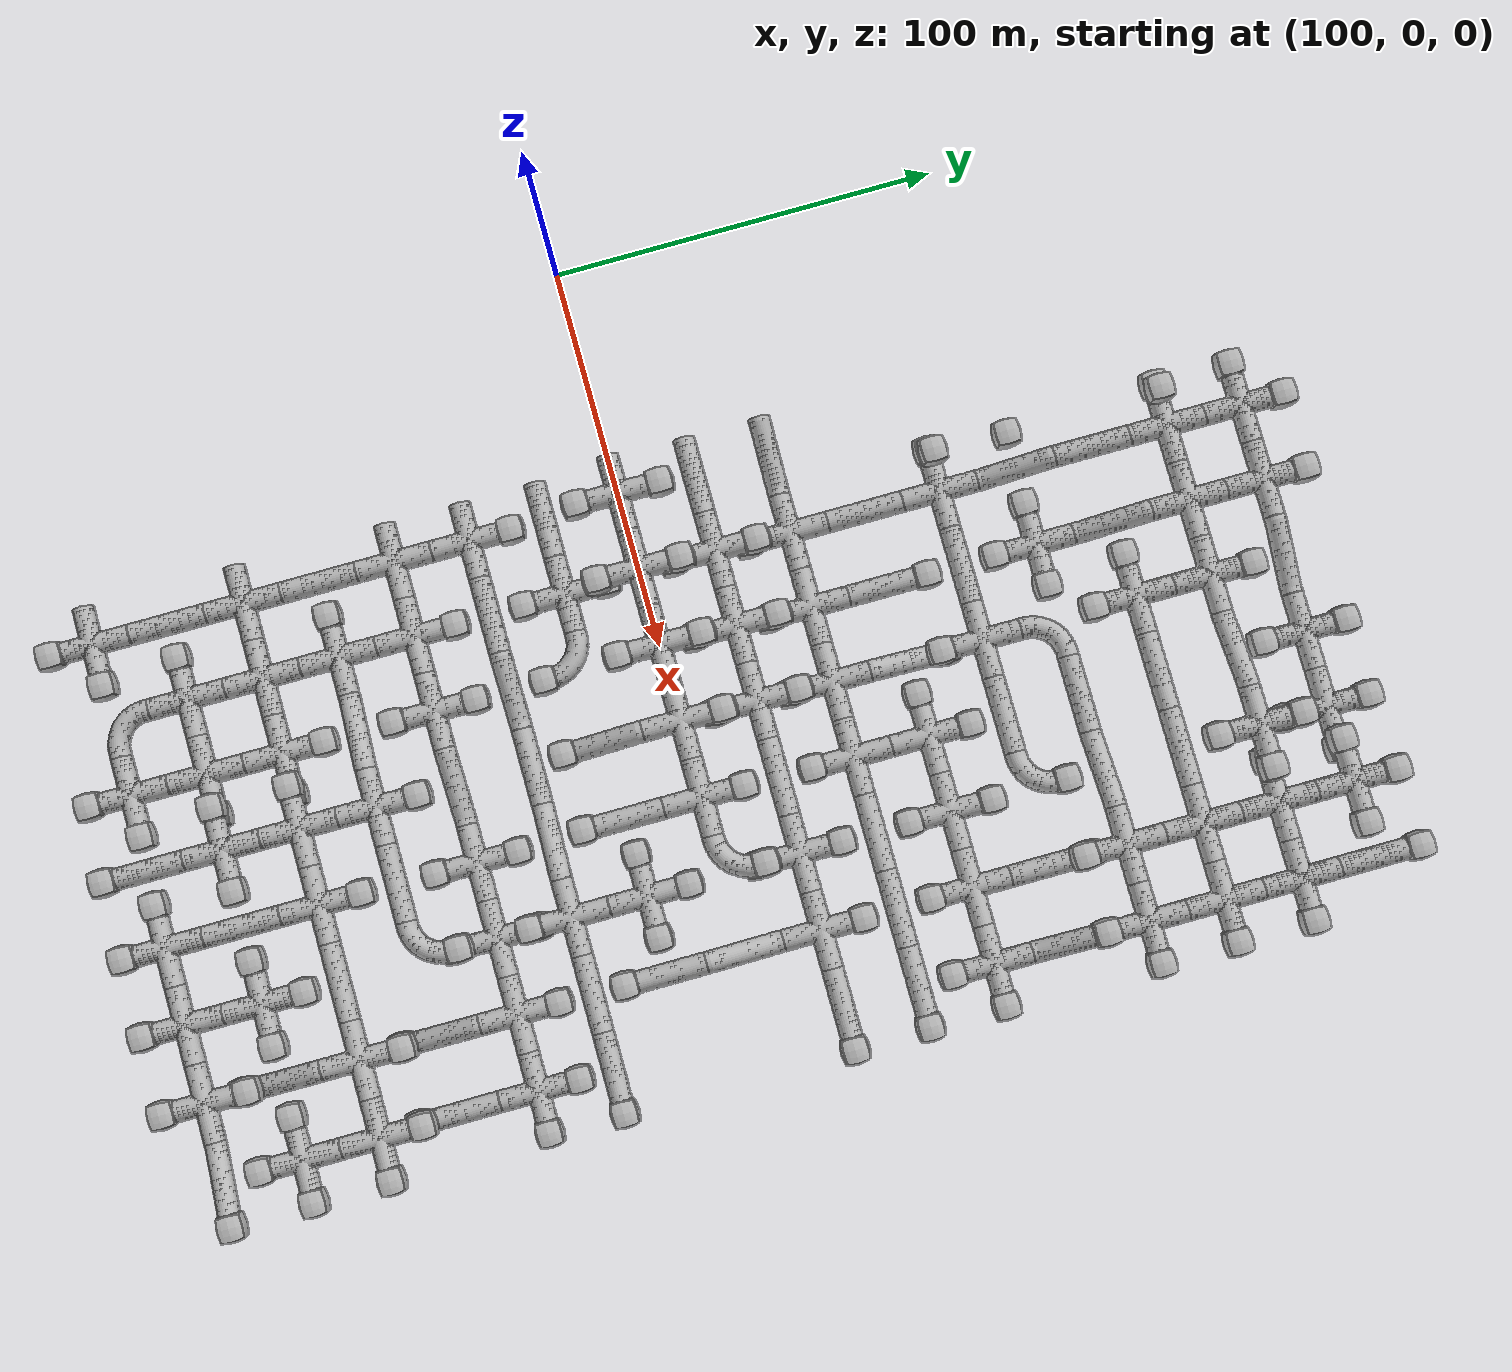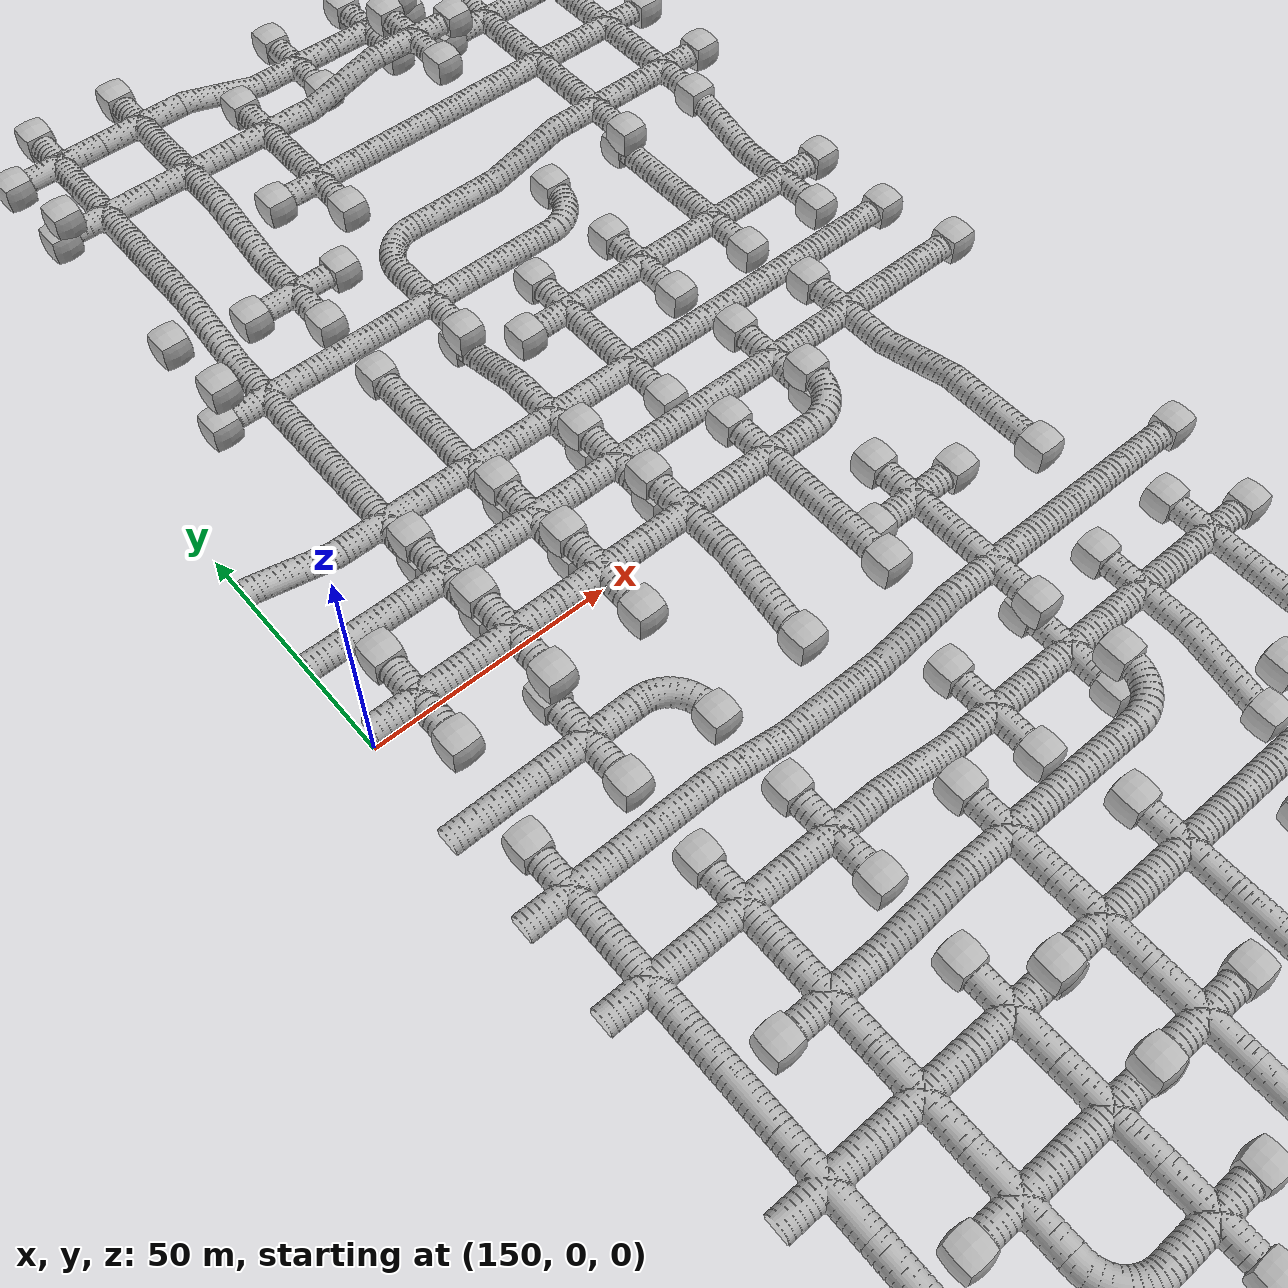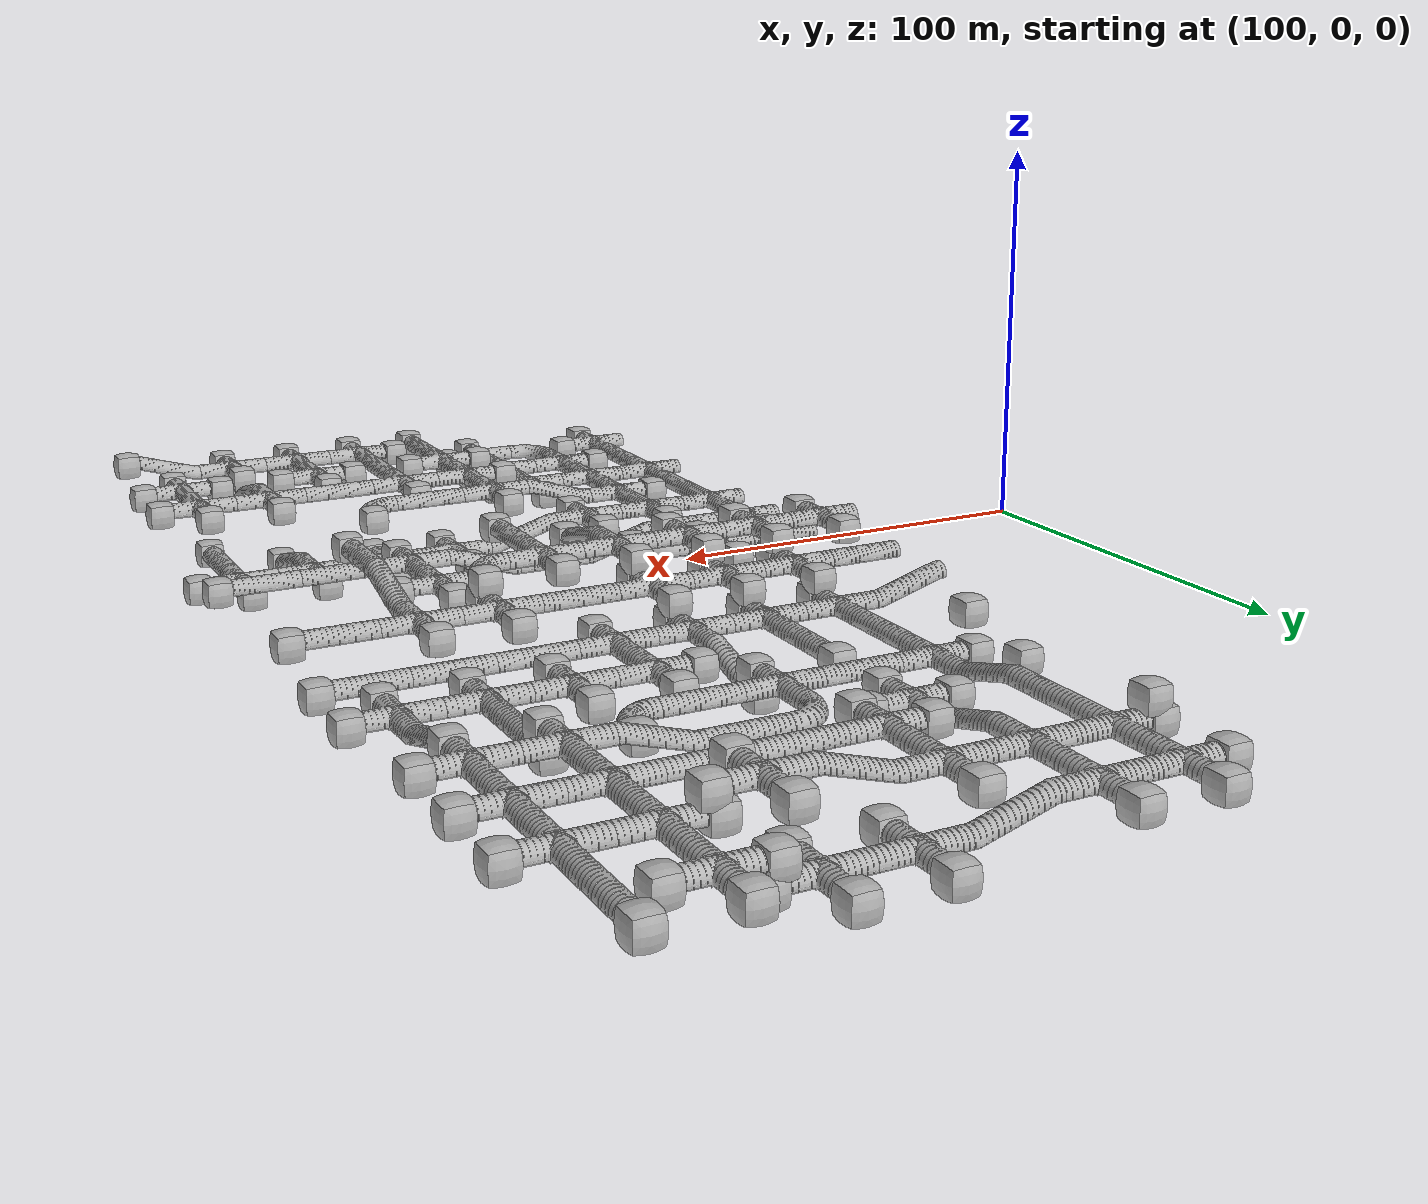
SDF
<sdf version="1.6">
 <world name="tunnel_circuit_03">
  <include>
   <name>tile_23</name>
   <uri>model://tunnel_tile_1</uri>
   <pose>180.000000 160.000000 0.000000 0 0 0.000000</pose>
  </include>
  <include>
   <name>tile_24</name>
   <uri>model://tunnel_tile_blocker</uri>
   <pose>169.000000 160.000000 0.000000 0 0 0.000000</pose>
  </include>
  <include>
   <name>tile_25</name>
   <uri>model://tunnel_tile_blocker</uri>
   <pose>180.000000 171.000000 0.000000 0 0 0.000000</pose>
  </include>
  <include>
   <name>tile_26</name>
   <uri>model://tunnel_tile_1</uri>
   <pose>200.000000 160.000000 0.000000 0 0 0.000000</pose>
  </include>
  <include>
   <name>tile_27</name>
   <uri>model://tunnel_tile_blocker</uri>
   <pose>200.000000 171.000000 0.000000 0 0 0.000000</pose>
  </include>
  <include>
   <name>tile_28</name>
   <uri>model://tunnel_tile_6</uri>
   <pose>220.000000 160.000000 -5.000000 0 0 1.570796</pose>
  </include>
  <include>
   <name>tile_29</name>
   <uri>model://tunnel_tile_1</uri>
   <pose>240.000000 160.000000 -5.000000 0 0 0.000000</pose>
  </include>
  <include>
   <name>tile_30</name>
   <uri>model://tunnel_tile_blocker</uri>
   <pose>240.000000 171.000000 -5.000000 0 0 0.000000</pose>
  </include>
  <include>
   <name>tile_31</name>
   <uri>model://tunnel_tile_blocker</uri>
   <pose>240.000000 149.000000 -5.000000 0 0 0.000000</pose>
  </include>
  <include>
   <name>tile_32</name>
   <uri>model://tunnel_tile_1</uri>
   <pose>260.000000 160.000000 -5.000000 0 0 0.000000</pose>
  </include>
  <include>
   <name>tile_33</name>
   <uri>model://tunnel_tile_blocker</uri>
   <pose>260.000000 171.000000 -5.000000 0 0 0.000000</pose>
  </include>
  <include>
   <name>tile_34</name>
   <uri>model://tunnel_tile_blocker</uri>
   <pose>260.000000 149.000000 -5.000000 0 0 0.000000</pose>
  </include>
  <include>
   <name>tile_35</name>
   <uri>model://tunnel_tile_blocker</uri>
   <pose>271.000000 160.000000 -5.000000 0 0 0.000000</pose>
  </include>
  <include>
   <name>tile_36</name>
   <uri>model://tunnel_tile_1</uri>
   <pose>280.000000 160.000000 0.000000 0 0 0.000000</pose>
  </include>
  <include>
   <name>tile_37</name>
   <uri>model://tunnel_tile_blocker</uri>
   <pose>269.000000 160.000000 0.000000 0 0 0.000000</pose>
  </include>
  <include>
   <name>tile_38</name>
   <uri>model://tunnel_tile_blocker</uri>
   <pose>291.000000 160.000000 0.000000 0 0 0.000000</pose>
  </include>
  <include>
   <name>tile_39</name>
   <uri>model://tunnel_tile_blocker</uri>
   <pose>280.000000 171.000000 0.000000 0 0 0.000000</pose>
  </include>
  <include>
   <name>tile_40</name>
   <uri>model://tunnel_tile_5</uri>
   <pose>300.000000 160.000000 0.000000 0 0 3.141593</pose>
  </include>
  <include>
   <name>tile_41</name>
   <uri>model://tunnel_tile_blocker</uri>
   <pose>300.000000 171.000000 0.000000 0 0 0.000000</pose>
  </include>
  <include>
   <name>tile_58</name>
   <uri>model://tunnel_tile_blocker</uri>
   <pose>171.000000 140.000000 5.000000 0 0 0.000000</pose>
  </include>
  <include>
   <name>tile_59</name>
   <uri>model://tunnel_tile_1</uri>
   <pose>180.000000 140.000000 0.000000 0 0 0.000000</pose>
  </include>
  <include>
   <name>tile_60</name>
   <uri>model://tunnel_tile_blocker</uri>
   <pose>169.000000 140.000000 0.000000 0 0 0.000000</pose>
  </include>
  <include>
   <name>tile_61</name>
   <uri>model://tunnel_tile_1</uri>
   <pose>200.000000 140.000000 0.000000 0 0 0.000000</pose>
  </include>
  <include>
   <name>tile_62</name>
   <uri>model://tunnel_tile_1</uri>
   <pose>220.000000 140.000000 0.000000 0 0 0.000000</pose>
  </include>
  <include>
   <name>tile_63</name>
   <uri>model://tunnel_tile_blocker</uri>
   <pose>220.000000 151.000000 0.000000 0 0 0.000000</pose>
  </include>
  <include>
   <name>tile_64</name>
   <uri>model://tunnel_tile_6</uri>
   <pose>240.000000 140.000000 0.000000 0 0 4.712389</pose>
  </include>
  <include>
   <name>tile_65</name>
   <uri>model://tunnel_tile_1</uri>
   <pose>260.000000 140.000000 5.000000 0 0 0.000000</pose>
  </include>
  <include>
   <name>tile_66</name>
   <uri>model://tunnel_tile_blocker</uri>
   <pose>260.000000 151.000000 5.000000 0 0 0.000000</pose>
  </include>
  <include>
   <name>tile_67</name>
   <uri>model://tunnel_tile_blocker</uri>
   <pose>260.000000 129.000000 5.000000 0 0 0.000000</pose>
  </include>
  <include>
   <name>tile_68</name>
   <uri>model://tunnel_tile_blocker</uri>
   <pose>271.000000 140.000000 5.000000 0 0 0.000000</pose>
  </include>
  <include>
   <name>tile_69</name>
   <uri>model://tunnel_tile_1</uri>
   <pose>280.000000 140.000000 0.000000 0 0 0.000000</pose>
  </include>
  <include>
   <name>tile_70</name>
   <uri>model://tunnel_tile_blocker</uri>
   <pose>269.000000 140.000000 0.000000 0 0 0.000000</pose>
  </include>
  <include>
   <name>tile_71</name>
   <uri>model://tunnel_tile_1</uri>
   <pose>300.000000 140.000000 0.000000 0 0 0.000000</pose>
  </include>
  <include>
   <name>tile_72</name>
   <uri>model://tunnel_tile_blocker</uri>
   <pose>311.000000 140.000000 0.000000 0 0 0.000000</pose>
  </include>
  <include>
   <name>tile_87</name>
   <uri>model://tunnel_tile_5</uri>
   <pose>180.000000 120.000000 0.000000 0 0 3.141593</pose>
  </include>
  <include>
   <name>tile_88</name>
   <uri>model://tunnel_tile_6</uri>
   <pose>200.000000 120.000000 -5.000000 0 0 0.000000</pose>
  </include>
  <include>
   <name>tile_89</name>
   <uri>model://tunnel_tile_1</uri>
   <pose>220.000000 120.000000 0.000000 0 0 0.000000</pose>
  </include>
  <include>
   <name>tile_90</name>
   <uri>model://tunnel_tile_blocker</uri>
   <pose>209.000000 120.000000 0.000000 0 0 0.000000</pose>
  </include>
  <include>
   <name>tile_91</name>
   <uri>model://tunnel_tile_blocker</uri>
   <pose>220.000000 109.000000 0.000000 0 0 0.000000</pose>
  </include>
  <include>
   <name>tile_92</name>
   <uri>model://tunnel_tile_5</uri>
   <pose>240.000000 120.000000 0.000000 0 0 1.570796</pose>
  </include>
  <include>
   <name>tile_93</name>
   <uri>model://tunnel_tile_5</uri>
   <pose>260.000000 120.000000 0.000000 0 0 4.712389</pose>
  </include>
  <include>
   <name>tile_94</name>
   <uri>model://tunnel_tile_1</uri>
   <pose>280.000000 120.000000 0.000000 0 0 0.000000</pose>
  </include>
  <include>
   <name>tile_95</name>
   <uri>model://tunnel_tile_1</uri>
   <pose>300.000000 120.000000 0.000000 0 0 0.000000</pose>
  </include>
  <include>
   <name>tile_96</name>
   <uri>model://tunnel_tile_blocker</uri>
   <pose>311.000000 120.000000 0.000000 0 0 0.000000</pose>
  </include>
  <include>
   <name>tile_115</name>
   <uri>model://tunnel_tile_blocker</uri>
   <pose>171.000000 100.000000 0.000000 0 0 0.000000</pose>
  </include>
  <include>
   <name>tile_116</name>
   <uri>model://tunnel_tile_6</uri>
   <pose>180.000000 100.000000 -5.000000 0 0 0.000000</pose>
  </include>
  <include>
   <name>tile_117</name>
   <uri>model://tunnel_tile_1</uri>
   <pose>200.000000 100.000000 -5.000000 0 0 0.000000</pose>
  </include>
  <include>
   <name>tile_118</name>
   <uri>model://tunnel_tile_blocker</uri>
   <pose>211.000000 100.000000 -5.000000 0 0 0.000000</pose>
  </include>
  <include>
   <name>tile_119</name>
   <uri>model://tunnel_tile_blocker</uri>
   <pose>189.000000 100.000000 -5.000000 0 0 0.000000</pose>
  </include>
  <include>
   <name>tile_120</name>
   <uri>model://tunnel_tile_blocker</uri>
   <pose>200.000000 89.000000 -5.000000 0 0 0.000000</pose>
  </include>
  <include>
   <name>tile_121</name>
   <uri>model://tunnel_tile_2</uri>
   <pose>220.000000 100.000000 -5.000000 0 0 0.000000</pose>
  </include>
  <include>
   <name>tile_122</name>
   <uri>model://tunnel_tile_5</uri>
   <pose>240.000000 100.000000 -5.000000 0 0 1.570796</pose>
  </include>
  <include>
   <name>tile_123</name>
   <uri>model://tunnel_tile_6</uri>
   <pose>260.000000 100.000000 -5.000000 0 0 4.712389</pose>
  </include>
  <include>
   <name>tile_124</name>
   <uri>model://tunnel_tile_1</uri>
   <pose>280.000000 100.000000 0.000000 0 0 0.000000</pose>
  </include>
  <include>
   <name>tile_125</name>
   <uri>model://tunnel_tile_blocker</uri>
   <pose>280.000000 89.000000 0.000000 0 0 0.000000</pose>
  </include>
  <include>
   <name>tile_126</name>
   <uri>model://tunnel_tile_1</uri>
   <pose>300.000000 100.000000 0.000000 0 0 0.000000</pose>
  </include>
  <include>
   <name>tile_127</name>
   <uri>model://tunnel_tile_blocker</uri>
   <pose>300.000000 89.000000 0.000000 0 0 0.000000</pose>
  </include>
  <include>
   <name>tile_128</name>
   <uri>model://tunnel_tile_blocker</uri>
   <pose>311.000000 100.000000 0.000000 0 0 0.000000</pose>
  </include>
  <include>
   <name>tile_144</name>
   <uri>model://tunnel_tile_blocker</uri>
   <pose>171.000000 80.000000 5.000000 0 0 0.000000</pose>
  </include>
  <include>
   <name>tile_145</name>
   <uri>model://tunnel_tile_1</uri>
   <pose>180.000000 80.000000 -5.000000 0 0 0.000000</pose>
  </include>
  <include>
   <name>tile_146</name>
   <uri>model://tunnel_tile_blocker</uri>
   <pose>169.000000 80.000000 -5.000000 0 0 0.000000</pose>
  </include>
  <include>
   <name>tile_147</name>
   <uri>model://tunnel_tile_5</uri>
   <pose>200.000000 80.000000 -5.000000 0 0 1.570796</pose>
  </include>
  <include>
   <name>tile_148</name>
   <uri>model://tunnel_tile_1</uri>
   <pose>220.000000 80.000000 -5.000000 0 0 0.000000</pose>
  </include>
  <include>
   <name>tile_149</name>
   <uri>model://tunnel_tile_blocker</uri>
   <pose>220.000000 69.000000 -5.000000 0 0 0.000000</pose>
  </include>
  <include>
   <name>tile_150</name>
   <uri>model://tunnel_tile_5</uri>
   <pose>240.000000 80.000000 -5.000000 0 0 1.570796</pose>
  </include>
  <include>
   <name>tile_151</name>
   <uri>model://tunnel_tile_2</uri>
   <pose>260.000000 80.000000 -5.000000 0 0 3.141593</pose>
  </include>
  <include>
   <name>tile_152</name>
   <uri>model://tunnel_tile_blocker</uri>
   <pose>260.000000 91.000000 -5.000000 0 0 0.000000</pose>
  </include>
  <include>
   <name>tile_153</name>
   <uri>model://tunnel_tile_5</uri>
   <pose>280.000000 80.000000 -5.000000 0 0 3.141593</pose>
  </include>
  <include>
   <name>tile_154</name>
   <uri>model://tunnel_tile_blocker</uri>
   <pose>280.000000 91.000000 -5.000000 0 0 0.000000</pose>
  </include>
  <include>
   <name>tile_155</name>
   <uri>model://tunnel_tile_6</uri>
   <pose>300.000000 80.000000 -5.000000 0 0 0.000000</pose>
  </include>
  <include>
   <name>tile_168</name>
   <uri>model://tunnel_tile_5</uri>
   <pose>180.000000 60.000000 -5.000000 0 0 3.141593</pose>
  </include>
  <include>
   <name>tile_169</name>
   <uri>model://tunnel_tile_5</uri>
   <pose>200.000000 60.000000 -5.000000 0 0 3.141593</pose>
  </include>
  <include>
   <name>tile_170</name>
   <uri>model://tunnel_tile_blocker</uri>
   <pose>200.000000 71.000000 -5.000000 0 0 0.000000</pose>
  </include>
  <include>
   <name>tile_171</name>
   <uri>model://tunnel_tile_6</uri>
   <pose>220.000000 60.000000 -10.000000 0 0 3.141593</pose>
  </include>
  <include>
   <name>tile_172</name>
   <uri>model://tunnel_tile_blocker</uri>
   <pose>220.000000 71.000000 -10.000000 0 0 0.000000</pose>
  </include>
  <include>
   <name>tile_173</name>
   <uri>model://tunnel_tile_1</uri>
   <pose>240.000000 60.000000 -5.000000 0 0 0.000000</pose>
  </include>
  <include>
   <name>tile_174</name>
   <uri>model://tunnel_tile_blocker</uri>
   <pose>229.000000 60.000000 -5.000000 0 0 0.000000</pose>
  </include>
  <include>
   <name>tile_175</name>
   <uri>model://tunnel_tile_blocker</uri>
   <pose>240.000000 71.000000 -5.000000 0 0 0.000000</pose>
  </include>
  <include>
   <name>tile_176</name>
   <uri>model://tunnel_tile_1</uri>
   <pose>260.000000 60.000000 -5.000000 0 0 0.000000</pose>
  </include>
  <include>
   <name>tile_177</name>
   <uri>model://tunnel_tile_blocker</uri>
   <pose>260.000000 71.000000 -5.000000 0 0 0.000000</pose>
  </include>
  <include>
   <name>tile_178</name>
   <uri>model://tunnel_tile_blocker</uri>
   <pose>260.000000 49.000000 -5.000000 0 0 0.000000</pose>
  </include>
  <include>
   <name>tile_179</name>
   <uri>model://tunnel_tile_1</uri>
   <pose>280.000000 60.000000 -5.000000 0 0 0.000000</pose>
  </include>
  <include>
   <name>tile_180</name>
   <uri>model://tunnel_tile_blocker</uri>
   <pose>280.000000 49.000000 -5.000000 0 0 0.000000</pose>
  </include>
  <include>
   <name>tile_181</name>
   <uri>model://tunnel_tile_1</uri>
   <pose>300.000000 60.000000 -5.000000 0 0 0.000000</pose>
  </include>
  <include>
   <name>tile_182</name>
   <uri>model://tunnel_tile_blocker</uri>
   <pose>300.000000 49.000000 -5.000000 0 0 0.000000</pose>
  </include>
  <include>
   <name>tile_183</name>
   <uri>model://tunnel_tile_blocker</uri>
   <pose>311.000000 60.000000 -5.000000 0 0 0.000000</pose>
  </include>
  <include>
   <name>phone_3</name>
   <uri>model://Phone</uri>
   <pose>297.800000 56.000000 -4.992000 1.570796 3.316126 0.000000</pose>
  </include>
  <include>
   <name>tile_195</name>
   <uri>model://tunnel_tile_6</uri>
   <pose>160.000000 40.000000 -5.000000 0 0 1.570796</pose>
  </include>
  <include>
   <name>tile_196</name>
   <uri>model://tunnel_tile_1</uri>
   <pose>180.000000 40.000000 -5.000000 0 0 0.000000</pose>
  </include>
  <include>
   <name>tile_197</name>
   <uri>model://tunnel_tile_blocker</uri>
   <pose>180.000000 29.000000 -5.000000 0 0 0.000000</pose>
  </include>
  <include>
   <name>tile_198</name>
   <uri>model://tunnel_tile_1</uri>
   <pose>200.000000 40.000000 -5.000000 0 0 0.000000</pose>
  </include>
  <include>
   <name>tile_199</name>
   <uri>model://tunnel_tile_blocker</uri>
   <pose>200.000000 29.000000 -5.000000 0 0 0.000000</pose>
  </include>
  <include>
   <name>tile_200</name>
   <uri>model://tunnel_tile_1</uri>
   <pose>220.000000 40.000000 -5.000000 0 0 0.000000</pose>
  </include>
  <include>
   <name>tile_201</name>
   <uri>model://tunnel_tile_blocker</uri>
   <pose>220.000000 29.000000 -5.000000 0 0 0.000000</pose>
  </include>
  <include>
   <name>tile_202</name>
   <uri>model://tunnel_tile_1</uri>
   <pose>240.000000 40.000000 -5.000000 0 0 0.000000</pose>
  </include>
  <include>
   <name>tile_203</name>
   <uri>model://tunnel_tile_blocker</uri>
   <pose>240.000000 29.000000 -5.000000 0 0 0.000000</pose>
  </include>
  <include>
   <name>tile_204</name>
   <uri>model://tunnel_tile_blocker</uri>
   <pose>240.000000 29.000000 -5.000000 0 0 0.000000</pose>
  </include>
  <include>
   <name>tile_205</name>
   <uri>model://tunnel_tile_5</uri>
   <pose>260.000000 40.000000 -5.000000 0 0 1.570796</pose>
  </include>
  <include>
   <name>tile_206</name>
   <uri>model://tunnel_tile_5</uri>
   <pose>280.000000 40.000000 -5.000000 0 0 1.570796</pose>
  </include>
  <include>
   <name>tile_207</name>
   <uri>model://tunnel_tile_5</uri>
   <pose>300.000000 40.000000 -5.000000 0 0 1.570796</pose>
  </include>
  <include>
   <name>tile_208</name>
   <uri>model://tunnel_tile_blocker</uri>
   <pose>311.000000 40.000000 -5.000000 0 0 0.000000</pose>
  </include>
  <include>
   <name>tile_222</name>
   <uri>model://tunnel_tile_5</uri>
   <pose>160.000000 20.000000 0.000000 0 0 1.570796</pose>
  </include>
  <include>
   <name>tile_223</name>
   <uri>model://tunnel_tile_1</uri>
   <pose>180.000000 20.000000 0.000000 0 0 0.000000</pose>
  </include>
  <include>
   <name>tile_224</name>
   <uri>model://tunnel_tile_blocker</uri>
   <pose>180.000000 31.000000 0.000000 0 0 0.000000</pose>
  </include>
  <include>
   <name>tile_225</name>
   <uri>model://tunnel_tile_blocker</uri>
   <pose>180.000000 9.000000 0.000000 0 0 0.000000</pose>
  </include>
  <include>
   <name>tile_226</name>
   <uri>model://tunnel_tile_1</uri>
   <pose>200.000000 20.000000 0.000000 0 0 0.000000</pose>
  </include>
  <include>
   <name>tile_227</name>
   <uri>model://tunnel_tile_blocker</uri>
   <pose>200.000000 31.000000 0.000000 0 0 0.000000</pose>
  </include>
  <include>
   <name>tile_228</name>
   <uri>model://tunnel_tile_blocker</uri>
   <pose>200.000000 9.000000 0.000000 0 0 0.000000</pose>
  </include>
  <include>
   <name>tile_229</name>
   <uri>model://tunnel_tile_1</uri>
   <pose>220.000000 20.000000 0.000000 0 0 0.000000</pose>
  </include>
  <include>
   <name>tile_230</name>
   <uri>model://tunnel_tile_blocker</uri>
   <pose>220.000000 31.000000 0.000000 0 0 0.000000</pose>
  </include>
  <include>
   <name>tile_231</name>
   <uri>model://tunnel_tile_blocker</uri>
   <pose>220.000000 9.000000 0.000000 0 0 0.000000</pose>
  </include>
  <include>
   <name>tile_232</name>
   <uri>model://tunnel_tile_5</uri>
   <pose>240.000000 20.000000 0.000000 0 0 1.570796</pose>
  </include>
  <include>
   <name>tile_233</name>
   <uri>model://tunnel_tile_1</uri>
   <pose>260.000000 20.000000 0.000000 0 0 0.000000</pose>
  </include>
  <include>
   <name>tile_234</name>
   <uri>model://tunnel_tile_blocker</uri>
   <pose>260.000000 31.000000 0.000000 0 0 0.000000</pose>
  </include>
  <include>
   <name>tile_235</name>
   <uri>model://tunnel_tile_blocker</uri>
   <pose>260.000000 9.000000 0.000000 0 0 0.000000</pose>
  </include>
  <include>
   <name>tile_236</name>
   <uri>model://tunnel_tile_1</uri>
   <pose>280.000000 20.000000 0.000000 0 0 0.000000</pose>
  </include>
  <include>
   <name>tile_237</name>
   <uri>model://tunnel_tile_blocker</uri>
   <pose>280.000000 31.000000 0.000000 0 0 0.000000</pose>
  </include>
  <include>
   <name>tile_238</name>
   <uri>model://tunnel_tile_5</uri>
   <pose>300.000000 20.000000 0.000000 0 0 1.570796</pose>
  </include>
  <include>
   <name>tile_239</name>
   <uri>model://tunnel_tile_blocker</uri>
   <pose>311.000000 20.000000 0.000000 0 0 0.000000</pose>
  </include>
  <include>
   <name>tile_249</name>
   <uri>model://tunnel_tile_1</uri>
   <pose>160.000000 0.000000 5.000000 0 0 0.000000</pose>
  </include>
  <include>
   <name>tile_250</name>
   <uri>model://tunnel_tile_blocker</uri>
   <pose>160.000000 11.000000 5.000000 0 0 0.000000</pose>
  </include>
  <include>
   <name>tile_251</name>
   <uri>model://tunnel_tile_blocker</uri>
   <pose>160.000000 -11.000000 5.000000 0 0 0.000000</pose>
  </include>
  <include>
   <name>tile_252</name>
   <uri>model://tunnel_tile_1</uri>
   <pose>180.000000 0.000000 5.000000 0 0 0.000000</pose>
  </include>
  <include>
   <name>tile_253</name>
   <uri>model://tunnel_tile_blocker</uri>
   <pose>180.000000 11.000000 5.000000 0 0 0.000000</pose>
  </include>
  <include>
   <name>tile_254</name>
   <uri>model://tunnel_tile_blocker</uri>
   <pose>180.000000 -11.000000 5.000000 0 0 0.000000</pose>
  </include>
  <include>
   <name>tile_255</name>
   <uri>model://tunnel_tile_1</uri>
   <pose>200.000000 0.000000 5.000000 0 0 0.000000</pose>
  </include>
  <include>
   <name>tile_256</name>
   <uri>model://tunnel_tile_blocker</uri>
   <pose>200.000000 11.000000 5.000000 0 0 0.000000</pose>
  </include>
  <include>
   <name>tile_257</name>
   <uri>model://tunnel_tile_blocker</uri>
   <pose>200.000000 -11.000000 5.000000 0 0 0.000000</pose>
  </include>
  <include>
   <name>tile_258</name>
   <uri>model://tunnel_tile_1</uri>
   <pose>220.000000 0.000000 5.000000 0 0 0.000000</pose>
  </include>
  <include>
   <name>tile_259</name>
   <uri>model://tunnel_tile_blocker</uri>
   <pose>220.000000 11.000000 5.000000 0 0 0.000000</pose>
  </include>
  <include>
   <name>tile_260</name>
   <uri>model://tunnel_tile_1</uri>
   <pose>240.000000 0.000000 5.000000 0 0 0.000000</pose>
  </include>
  <include>
   <name>tile_261</name>
   <uri>model://tunnel_tile_blocker</uri>
   <pose>240.000000 11.000000 5.000000 0 0 0.000000</pose>
  </include>
  <include>
   <name>tile_262</name>
   <uri>model://tunnel_tile_2</uri>
   <pose>260.000000 0.000000 5.000000 0 0 3.141593</pose>
  </include>
  <include>
   <name>tile_263</name>
   <uri>model://tunnel_tile_blocker</uri>
   <pose>260.000000 11.000000 5.000000 0 0 0.000000</pose>
  </include>
  <include>
   <name>tile_264</name>
   <uri>model://tunnel_tile_6</uri>
   <pose>280.000000 0.000000 0.000000 0 0 3.141593</pose>
  </include>
  <include>
   <name>tile_277</name>
   <uri>model://tunnel_tile_5</uri>
   <pose>160.000000 -20.000000 -5.000000 0 0 1.570796</pose>
  </include>
  <include>
   <name>tile_278</name>
   <uri>model://tunnel_tile_1</uri>
   <pose>180.000000 -20.000000 -5.000000 0 0 0.000000</pose>
  </include>
  <include>
   <name>tile_279</name>
   <uri>model://tunnel_tile_blocker</uri>
   <pose>180.000000 -9.000000 -5.000000 0 0 0.000000</pose>
  </include>
  <include>
   <name>tile_280</name>
   <uri>model://tunnel_tile_blocker</uri>
   <pose>180.000000 -31.000000 -5.000000 0 0 0.000000</pose>
  </include>
  <include>
   <name>tile_281</name>
   <uri>model://tunnel_tile_2</uri>
   <pose>200.000000 -20.000000 -5.000000 0 0 4.712389</pose>
  </include>
  <include>
   <name>tile_282</name>
   <uri>model://tunnel_tile_blocker</uri>
   <pose>200.000000 -31.000000 -5.000000 0 0 0.000000</pose>
  </include>
  <include>
   <name>tile_283</name>
   <uri>model://tunnel_tile_6</uri>
   <pose>220.000000 -20.000000 0.000000 0 0 0.000000</pose>
  </include>
  <include>
   <name>tile_284</name>
   <uri>model://tunnel_tile_blocker</uri>
   <pose>220.000000 -31.000000 0.000000 0 0 0.000000</pose>
  </include>
  <include>
   <name>tile_285</name>
   <uri>model://tunnel_tile_5</uri>
   <pose>240.000000 -20.000000 5.000000 0 0 0.000000</pose>
  </include>
  <include>
   <name>tile_286</name>
   <uri>model://tunnel_tile_blocker</uri>
   <pose>240.000000 -31.000000 5.000000 0 0 0.000000</pose>
  </include>
  <include>
   <name>tile_287</name>
   <uri>model://tunnel_tile_blocker</uri>
   <pose>240.000000 -31.000000 5.000000 0 0 0.000000</pose>
  </include>
  <include>
   <name>extinguisher_3</name>
   <uri>model://Extinguisher</uri>
   <pose>240.000000 -15.000000 5.000000 0 0 0.000000</pose>
  </include>
  <include>
   <name>tile_288</name>
   <uri>model://tunnel_tile_1</uri>
   <pose>260.000000 -20.000000 -5.000000 0 0 0.000000</pose>
  </include>
  <include>
   <name>tile_289</name>
   <uri>model://tunnel_tile_blocker</uri>
   <pose>249.000000 -20.000000 -5.000000 0 0 0.000000</pose>
  </include>
  <include>
   <name>tile_290</name>
   <uri>model://tunnel_tile_blocker</uri>
   <pose>271.000000 -20.000000 -5.000000 0 0 0.000000</pose>
  </include>
  <include>
   <name>tile_291</name>
   <uri>model://tunnel_tile_blocker</uri>
   <pose>260.000000 -9.000000 -5.000000 0 0 0.000000</pose>
  </include>
  <include>
   <name>tile_292</name>
   <uri>model://tunnel_tile_5</uri>
   <pose>280.000000 -20.000000 5.000000 0 0 0.000000</pose>
  </include>
  <include>
   <name>tile_293</name>
   <uri>model://tunnel_tile_blocker</uri>
   <pose>280.000000 -31.000000 5.000000 0 0 0.000000</pose>
  </include>
  <include>
   <name>tile_310</name>
   <uri>model://tunnel_tile_1</uri>
   <pose>160.000000 -40.000000 -5.000000 0 0 0.000000</pose>
  </include>
  <include>
   <name>tile_311</name>
   <uri>model://tunnel_tile_blocker</uri>
   <pose>160.000000 -29.000000 -5.000000 0 0 0.000000</pose>
  </include>
  <include>
   <name>tile_312</name>
   <uri>model://tunnel_tile_5</uri>
   <pose>180.000000 -40.000000 -5.000000 0 0 1.570796</pose>
  </include>
  <include>
   <name>tile_313</name>
   <uri>model://tunnel_tile_6</uri>
   <pose>200.000000 -40.000000 -10.000000 0 0 1.570796</pose>
  </include>
  <include>
   <name>tile_314</name>
   <uri>model://tunnel_tile_5</uri>
   <pose>220.000000 -40.000000 -10.000000 0 0 1.570796</pose>
  </include>
  <include>
   <name>tile_315</name>
   <uri>model://tunnel_tile_6</uri>
   <pose>240.000000 -40.000000 -10.000000 0 0 4.712389</pose>
  </include>
  <include>
   <name>tile_316</name>
   <uri>model://tunnel_tile_1</uri>
   <pose>260.000000 -40.000000 -5.000000 0 0 0.000000</pose>
  </include>
  <include>
   <name>tile_317</name>
   <uri>model://tunnel_tile_blocker</uri>
   <pose>260.000000 -51.000000 -5.000000 0 0 0.000000</pose>
  </include>
  <include>
   <name>tile_318</name>
   <uri>model://tunnel_tile_5</uri>
   <pose>280.000000 -40.000000 -5.000000 0 0 1.570796</pose>
  </include>
  <include>
   <name>tile_319</name>
   <uri>model://tunnel_tile_5</uri>
   <pose>300.000000 -40.000000 -5.000000 0 0 1.570796</pose>
  </include>
  <include>
   <name>tile_320</name>
   <uri>model://tunnel_tile_blocker</uri>
   <pose>311.000000 -40.000000 -5.000000 0 0 0.000000</pose>
  </include>
  <include>
   <name>tile_334</name>
   <uri>model://tunnel_tile_1</uri>
   <pose>160.000000 -60.000000 -5.000000 0 0 0.000000</pose>
  </include>
  <include>
   <name>tile_336</name>
   <uri>model://tunnel_tile_1</uri>
   <pose>180.000000 -60.000000 -5.000000 0 0 0.000000</pose>
  </include>
  <include>
   <name>tile_337</name>
   <uri>model://tunnel_tile_blocker</uri>
   <pose>180.000000 -49.000000 -5.000000 0 0 0.000000</pose>
  </include>
  <include>
   <name>tile_338</name>
   <uri>model://tunnel_tile_1</uri>
   <pose>200.000000 -60.000000 -5.000000 0 0 0.000000</pose>
  </include>
  <include>
   <name>tile_339</name>
   <uri>model://tunnel_tile_blocker</uri>
   <pose>200.000000 -49.000000 -5.000000 0 0 0.000000</pose>
  </include>
  <include>
   <name>tile_340</name>
   <uri>model://tunnel_tile_blocker</uri>
   <pose>200.000000 -71.000000 -5.000000 0 0 0.000000</pose>
  </include>
  <include>
   <name>tile_341</name>
   <uri>model://tunnel_tile_6</uri>
   <pose>220.000000 -60.000000 -10.000000 0 0 1.570796</pose>
  </include>
  <include>
   <name>tile_342</name>
   <uri>model://tunnel_tile_1</uri>
   <pose>240.000000 -60.000000 -10.000000 0 0 0.000000</pose>
  </include>
  <include>
   <name>tile_343</name>
   <uri>model://tunnel_tile_blocker</uri>
   <pose>240.000000 -49.000000 -10.000000 0 0 0.000000</pose>
  </include>
  <include>
   <name>tile_344</name>
   <uri>model://tunnel_tile_blocker</uri>
   <pose>240.000000 -71.000000 -10.000000 0 0 0.000000</pose>
  </include>
  <include>
   <name>tile_345</name>
   <uri>model://tunnel_tile_1</uri>
   <pose>260.000000 -60.000000 -10.000000 0 0 0.000000</pose>
  </include>
  <include>
   <name>tile_346</name>
   <uri>model://tunnel_tile_blocker</uri>
   <pose>260.000000 -49.000000 -10.000000 0 0 0.000000</pose>
  </include>
  <include>
   <name>tile_347</name>
   <uri>model://tunnel_tile_blocker</uri>
   <pose>260.000000 -71.000000 -10.000000 0 0 0.000000</pose>
  </include>
  <include>
   <name>tile_348</name>
   <uri>model://tunnel_tile_1</uri>
   <pose>280.000000 -60.000000 -10.000000 0 0 0.000000</pose>
  </include>
  <include>
   <name>tile_349</name>
   <uri>model://tunnel_tile_blocker</uri>
   <pose>280.000000 -49.000000 -10.000000 0 0 0.000000</pose>
  </include>
  <include>
   <name>tile_350</name>
   <uri>model://tunnel_tile_1</uri>
   <pose>300.000000 -60.000000 -10.000000 0 0 0.000000</pose>
  </include>
  <include>
   <name>tile_351</name>
   <uri>model://tunnel_tile_blocker</uri>
   <pose>300.000000 -49.000000 -10.000000 0 0 0.000000</pose>
  </include>
  <include>
   <name>tile_352</name>
   <uri>model://tunnel_tile_blocker</uri>
   <pose>311.000000 -60.000000 -10.000000 0 0 0.000000</pose>
  </include>
  <include>
   <name>tile_367</name>
   <uri>model://tunnel_tile_5</uri>
   <pose>160.000000 -80.000000 -5.000000 0 0 0.000000</pose>
  </include>
  <include>
   <name>tile_368</name>
   <uri>model://tunnel_tile_1</uri>
   <pose>180.000000 -80.000000 -5.000000 0 0 0.000000</pose>
  </include>
  <include>
   <name>tile_369</name>
   <uri>model://tunnel_tile_blocker</uri>
   <pose>169.000000 -80.000000 -5.000000 0 0 0.000000</pose>
  </include>
  <include>
   <name>tile_370</name>
   <uri>model://tunnel_tile_6</uri>
   <pose>200.000000 -80.000000 -5.000000 0 0 4.712389</pose>
  </include>
  <include>
   <name>tile_371</name>
   <uri>model://tunnel_tile_1</uri>
   <pose>220.000000 -80.000000 0.000000 0 0 0.000000</pose>
  </include>
  <include>
   <name>tile_372</name>
   <uri>model://tunnel_tile_blocker</uri>
   <pose>220.000000 -69.000000 0.000000 0 0 0.000000</pose>
  </include>
  <include>
   <name>tile_373</name>
   <uri>model://tunnel_tile_5</uri>
   <pose>240.000000 -80.000000 0.000000 0 0 1.570796</pose>
  </include>
  <include>
   <name>tile_374</name>
   <uri>model://tunnel_tile_2</uri>
   <pose>260.000000 -80.000000 0.000000 0 0 3.141593</pose>
  </include>
  <include>
   <name>tile_375</name>
   <uri>model://tunnel_tile_blocker</uri>
   <pose>260.000000 -69.000000 0.000000 0 0 0.000000</pose>
  </include>
  <include>
   <name>tile_376</name>
   <uri>model://tunnel_tile_6</uri>
   <pose>280.000000 -80.000000 -15.000000 0 0 0.000000</pose>
  </include>
  <include>
   <name>tile_377</name>
   <uri>model://tunnel_tile_blocker</uri>
   <pose>280.000000 -91.000000 -15.000000 0 0 0.000000</pose>
  </include>
  <include>
   <name>tile_378</name>
   <uri>model://tunnel_tile_5</uri>
   <pose>300.000000 -80.000000 -10.000000 0 0 0.000000</pose>
  </include>
  <include>
   <name>tile_379</name>
   <uri>model://tunnel_tile_blocker</uri>
   <pose>300.000000 -91.000000 -10.000000 0 0 0.000000</pose>
  </include>
  <include>
   <name>tile_395</name>
   <uri>model://tunnel_tile_1</uri>
   <pose>160.000000 -100.000000 -5.000000 0 0 0.000000</pose>
  </include>
  <include>
   <name>tile_397</name>
   <uri>model://tunnel_tile_1</uri>
   <pose>180.000000 -100.000000 -5.000000 0 0 0.000000</pose>
  </include>
  <include>
   <name>tile_398</name>
   <uri>model://tunnel_tile_1</uri>
   <pose>200.000000 -100.000000 -5.000000 0 0 0.000000</pose>
  </include>
  <include>
   <name>tile_399</name>
   <uri>model://tunnel_tile_blocker</uri>
   <pose>200.000000 -89.000000 -5.000000 0 0 0.000000</pose>
  </include>
  <include>
   <name>tile_400</name>
   <uri>model://tunnel_tile_blocker</uri>
   <pose>211.000000 -100.000000 -5.000000 0 0 0.000000</pose>
  </include>
  <include>
   <name>tile_401</name>
   <uri>model://tunnel_tile_1</uri>
   <pose>220.000000 -100.000000 0.000000 0 0 0.000000</pose>
  </include>
  <include>
   <name>tile_402</name>
   <uri>model://tunnel_tile_blocker</uri>
   <pose>209.000000 -100.000000 0.000000 0 0 0.000000</pose>
  </include>
  <include>
   <name>tile_403</name>
   <uri>model://tunnel_tile_1</uri>
   <pose>240.000000 -100.000000 0.000000 0 0 0.000000</pose>
  </include>
  <include>
   <name>tile_404</name>
   <uri>model://tunnel_tile_blocker</uri>
   <pose>240.000000 -89.000000 0.000000 0 0 0.000000</pose>
  </include>
  <include>
   <name>tile_405</name>
   <uri>model://tunnel_tile_5</uri>
   <pose>260.000000 -100.000000 0.000000 0 0 1.570796</pose>
  </include>
  <include>
   <name>tile_406</name>
   <uri>model://tunnel_tile_1</uri>
   <pose>280.000000 -100.000000 0.000000 0 0 0.000000</pose>
  </include>
  <include>
   <name>tile_407</name>
   <uri>model://tunnel_tile_blocker</uri>
   <pose>280.000000 -89.000000 0.000000 0 0 0.000000</pose>
  </include>
  <include>
   <name>tile_408</name>
   <uri>model://tunnel_tile_1</uri>
   <pose>300.000000 -100.000000 0.000000 0 0 0.000000</pose>
  </include>
  <include>
   <name>tile_409</name>
   <uri>model://tunnel_tile_blocker</uri>
   <pose>300.000000 -89.000000 0.000000 0 0 0.000000</pose>
  </include>
  <include>
   <name>tile_410</name>
   <uri>model://tunnel_tile_blocker</uri>
   <pose>311.000000 -100.000000 0.000000 0 0 0.000000</pose>
  </include>
  <include>
   <name>tile_427</name>
   <uri>model://tunnel_tile_5</uri>
   <pose>160.000000 -120.000000 -5.000000 0 0 0.000000</pose>
  </include>
  <include>
   <name>tile_428</name>
   <uri>model://tunnel_tile_1</uri>
   <pose>180.000000 -120.000000 -5.000000 0 0 0.000000</pose>
  </include>
  <include>
   <name>tile_429</name>
   <uri>model://tunnel_tile_blocker</uri>
   <pose>169.000000 -120.000000 -5.000000 0 0 0.000000</pose>
  </include>
  <include>
   <name>tile_430</name>
   <uri>model://tunnel_tile_1</uri>
   <pose>200.000000 -120.000000 -5.000000 0 0 0.000000</pose>
  </include>
  <include>
   <name>tile_431</name>
   <uri>model://tunnel_tile_blocker</uri>
   <pose>211.000000 -120.000000 -5.000000 0 0 0.000000</pose>
  </include>
  <include>
   <name>tile_432</name>
   <uri>model://tunnel_tile_1</uri>
   <pose>220.000000 -120.000000 0.000000 0 0 0.000000</pose>
  </include>
  <include>
   <name>tile_433</name>
   <uri>model://tunnel_tile_blocker</uri>
   <pose>231.000000 -120.000000 0.000000 0 0 0.000000</pose>
  </include>
  <include>
   <name>tile_434</name>
   <uri>model://tunnel_tile_blocker</uri>
   <pose>209.000000 -120.000000 0.000000 0 0 0.000000</pose>
  </include>
  <include>
   <name>tile_435</name>
   <uri>model://tunnel_tile_5</uri>
   <pose>240.000000 -120.000000 0.000000 0 0 0.000000</pose>
  </include>
  <include>
   <name>tile_436</name>
   <uri>model://tunnel_tile_1</uri>
   <pose>260.000000 -120.000000 0.000000 0 0 0.000000</pose>
  </include>
  <include>
   <name>tile_437</name>
   <uri>model://tunnel_tile_blocker</uri>
   <pose>249.000000 -120.000000 0.000000 0 0 0.000000</pose>
  </include>
  <include>
   <name>tile_438</name>
   <uri>model://tunnel_tile_blocker</uri>
   <pose>271.000000 -120.000000 0.000000 0 0 0.000000</pose>
  </include>
  <include>
   <name>tile_439</name>
   <uri>model://tunnel_tile_blocker</uri>
   <pose>260.000000 -109.000000 0.000000 0 0 0.000000</pose>
  </include>
  <include>
   <name>tile_440</name>
   <uri>model://tunnel_tile_6</uri>
   <pose>280.000000 -120.000000 -5.000000 0 0 0.000000</pose>
  </include>
  <include>
   <name>tile_441</name>
   <uri>model://tunnel_tile_blocker</uri>
   <pose>280.000000 -131.000000 -5.000000 0 0 0.000000</pose>
  </include>
  <include>
   <name>tile_442</name>
   <uri>model://tunnel_tile_1</uri>
   <pose>300.000000 -120.000000 0.000000 0 0 0.000000</pose>
  </include>
  <include>
   <name>tile_443</name>
   <uri>model://tunnel_tile_blocker</uri>
   <pose>311.000000 -120.000000 0.000000 0 0 0.000000</pose>
  </include>
  <include>
   <name>tile_444</name>
   <uri>model://tunnel_tile_blocker</uri>
   <pose>289.000000 -120.000000 0.000000 0 0 0.000000</pose>
  </include>
  <include>
   <name>tile_445</name>
   <uri>model://tunnel_tile_blocker</uri>
   <pose>300.000000 -131.000000 0.000000 0 0 0.000000</pose>
  </include>
  <include>
   <name>tile_466</name>
   <uri>model://tunnel_tile_1</uri>
   <pose>160.000000 -140.000000 -5.000000 0 0 0.000000</pose>
  </include>
  <include>
   <name>tile_467</name>
   <uri>model://tunnel_tile_blocker</uri>
   <pose>171.000000 -140.000000 -5.000000 0 0 0.000000</pose>
  </include>
  <include>
   <name>tile_469</name>
   <uri>model://tunnel_tile_blocker</uri>
   <pose>160.000000 -151.000000 -5.000000 0 0 0.000000</pose>
  </include>
  <include>
   <name>tile_470</name>
   <uri>model://tunnel_tile_2</uri>
   <pose>180.000000 -140.000000 -5.000000 0 0 1.570796</pose>
  </include>
  <include>
   <name>tile_471</name>
   <uri>model://tunnel_tile_1</uri>
   <pose>200.000000 -140.000000 -5.000000 0 0 0.000000</pose>
  </include>
  <include>
   <name>tile_472</name>
   <uri>model://tunnel_tile_blocker</uri>
   <pose>211.000000 -140.000000 -5.000000 0 0 0.000000</pose>
  </include>
  <include>
   <name>tile_473</name>
   <uri>model://tunnel_tile_blocker</uri>
   <pose>200.000000 -151.000000 -5.000000 0 0 0.000000</pose>
  </include>
  <include>
   <name>tile_474</name>
   <uri>model://tunnel_tile_5</uri>
   <pose>220.000000 -140.000000 0.000000 0 0 0.000000</pose>
  </include>
  <include>
   <name>tile_475</name>
   <uri>model://tunnel_tile_blocker</uri>
   <pose>220.000000 -151.000000 0.000000 0 0 0.000000</pose>
  </include>
  <include>
   <name>tile_476</name>
   <uri>model://tunnel_tile_1</uri>
   <pose>240.000000 -140.000000 0.000000 0 0 0.000000</pose>
  </include>
  <include>
   <name>tile_477</name>
   <uri>model://tunnel_tile_blocker</uri>
   <pose>229.000000 -140.000000 0.000000 0 0 0.000000</pose>
  </include>
  <include>
   <name>tile_478</name>
   <uri>model://tunnel_tile_blocker</uri>
   <pose>240.000000 -151.000000 0.000000 0 0 0.000000</pose>
  </include>
  <include>
   <name>tile_479</name>
   <uri>model://tunnel_tile_1</uri>
   <pose>260.000000 -140.000000 0.000000 0 0 0.000000</pose>
  </include>
  <include>
   <name>tile_480</name>
   <uri>model://tunnel_tile_blocker</uri>
   <pose>260.000000 -151.000000 0.000000 0 0 0.000000</pose>
  </include>
  <include>
   <name>tile_481</name>
   <uri>model://tunnel_tile_1</uri>
   <pose>280.000000 -140.000000 0.000000 0 0 0.000000</pose>
  </include>
  <include>
   <name>tile_482</name>
   <uri>model://tunnel_tile_blocker</uri>
   <pose>280.000000 -151.000000 0.000000 0 0 0.000000</pose>
  </include>
  <include>
   <name>tile_483</name>
   <uri>model://tunnel_tile_blocker</uri>
   <pose>280.000000 -129.000000 0.000000 0 0 0.000000</pose>
  </include>
  <include>
   <name>tile_484</name>
   <uri>model://tunnel_tile_6</uri>
   <pose>300.000000 -140.000000 0.000000 0 0 4.712389</pose>
  </include>
  <include>
   <name>tile_485</name>
   <uri>model://tunnel_tile_blocker</uri>
   <pose>311.000000 -140.000000 5.000000 0 0 0.000000</pose>
  </include>
 </world>
</sdf>
